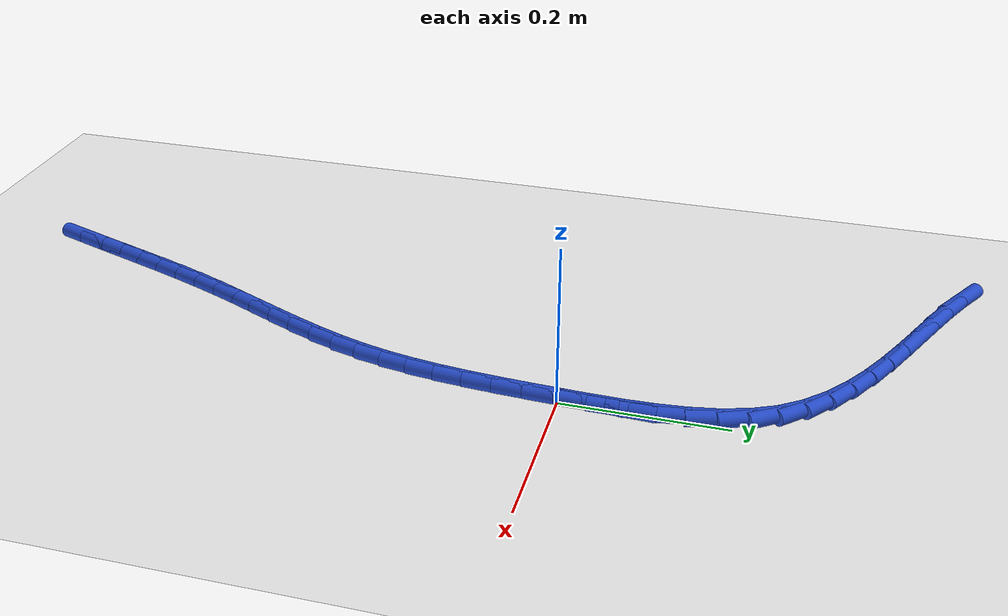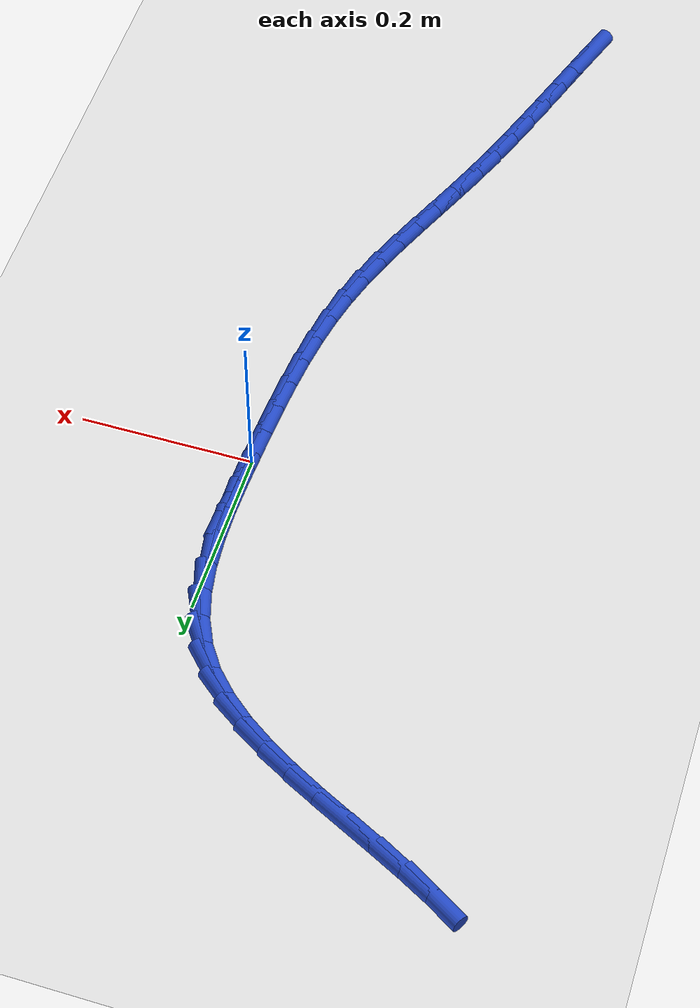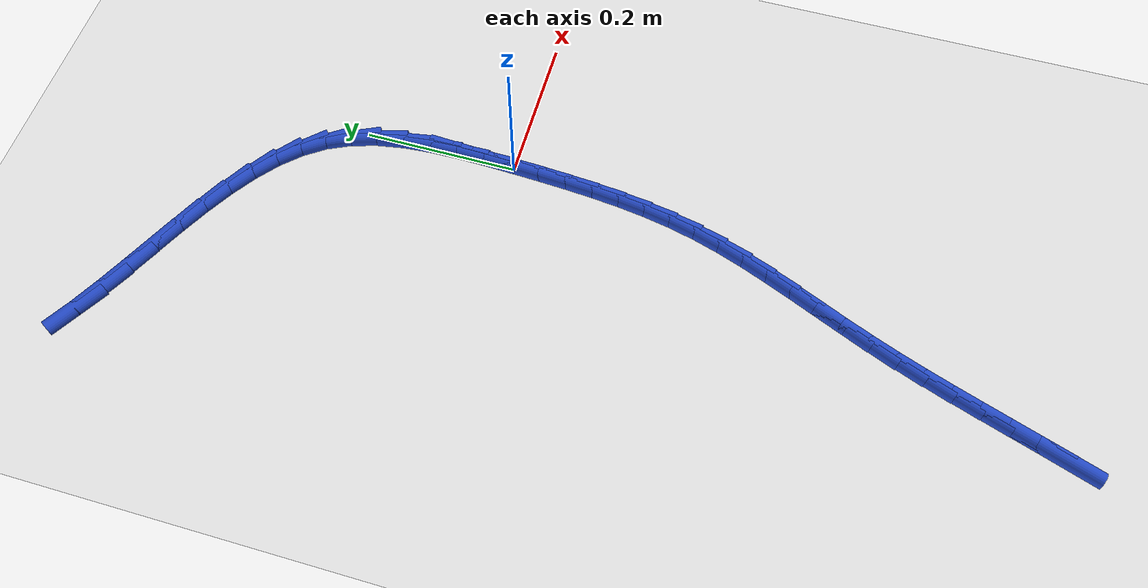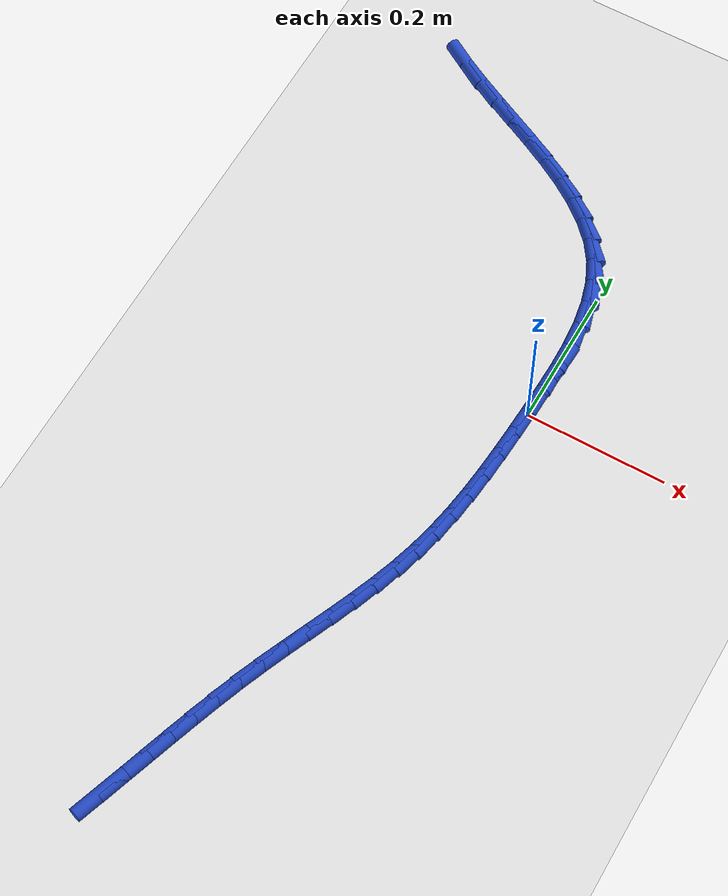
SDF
<sdf version="1.6">
 <world name="default">
  <model name="ground_plane">
   <static>1</static>
   <link name="link">
    <collision name="collision">
     <geometry><plane><normal>0 0 1</normal><size>100 100</size></plane></geometry>
     <surface><friction><ode><mu>100</mu><mu2>50</mu2></ode></friction></surface>
    </collision>
    <visual name="visual">
     <cast_shadows>0</cast_shadows>
     <geometry><plane><normal>0 0 1</normal><size>100 100</size></plane></geometry>
     <material>
      <script><uri>file://media/materials/scripts/gazebo.material</uri><name>Gazebo/WhiteGlow</name></script>
     </material>
    </visual>
   </link>
  </model>
  <model name="line">
   <link name="link_0">
    <pose>-1.1492543028346347e-17 6.938893903907228e-18 0.01 0 1.57 1.5265133083113267</pose>
    <collision name="collision">
     <geometry><cylinder><radius>0.01</radius><length>0.08</length></cylinder></geometry>
    </collision>
    <visual name="visual">
     <material>
      <script><name>Gazebo/Blue</name><uri>file://media/materials/scripts/gazebo.material</uri></script>
     </material>
     <geometry><cylinder><radius>0.01</radius><length>0.08</length></cylinder></geometry>
    </visual>
   </link>
   <link name="link_1">
    <pose>0.0016721609055566793 0.03773608466565423 0.01 0 1.57 1.5485229028191574</pose>
    <collision name="collision">
     <geometry><cylinder><radius>0.01</radius><length>0.08</length></cylinder></geometry>
    </collision>
    <visual name="visual">
     <material>
      <script><name>Gazebo/Blue</name><uri>file://media/materials/scripts/gazebo.material</uri></script>
     </material>
     <geometry><cylinder><radius>0.01</radius><length>0.08</length></cylinder></geometry>
    </visual>
   </link>
   <link name="link_2">
    <pose>0.0025159711578495773 0.0756139928392952 0.01 0 1.57 -1.5518823976013116</pose>
    <collision name="collision">
     <geometry><cylinder><radius>0.01</radius><length>0.08</length></cylinder></geometry>
    </collision>
    <visual name="visual">
     <material>
      <script><name>Gazebo/Blue</name><uri>file://media/materials/scripts/gazebo.material</uri></script>
     </material>
     <geometry><cylinder><radius>0.01</radius><length>0.08</length></cylinder></geometry>
    </visual>
   </link>
   <link name="link_3">
    <pose>0.001807100534460578 0.1130882841108333 0.01 0 1.57 -1.4892292406859797</pose>
    <collision name="collision">
     <geometry><cylinder><radius>0.01</radius><length>0.08</length></cylinder></geometry>
    </collision>
    <visual name="visual">
     <material>
      <script><name>Gazebo/Blue</name><uri>file://media/materials/scripts/gazebo.material</uri></script>
     </material>
     <geometry><cylinder><radius>0.01</radius><length>0.08</length></cylinder></geometry>
    </visual>
   </link>
   <link name="link_4">
    <pose>-0.0011787811870284217 0.14961351807017886 0.01 0 1.57 -1.4015185372533039</pose>
    <collision name="collision">
     <geometry><cylinder><radius>0.01</radius><length>0.08</length></cylinder></geometry>
    </collision>
    <visual name="visual">
     <material>
      <script><name>Gazebo/Blue</name><uri>file://media/materials/scripts/gazebo.material</uri></script>
     </material>
     <geometry><cylinder><radius>0.01</radius><length>0.08</length></cylinder></geometry>
    </visual>
   </link>
   <link name="link_5">
    <pose>-0.007166004229035531 0.18464425430724218 0.01 0 1.57 -1.2844737737605367</pose>
    <collision name="collision">
     <geometry><cylinder><radius>0.01</radius><length>0.08</length></cylinder></geometry>
    </collision>
    <visual name="visual">
     <material>
      <script><name>Gazebo/Blue</name><uri>file://media/materials/scripts/gazebo.material</uri></script>
     </material>
     <geometry><cylinder><radius>0.01</radius><length>0.08</length></cylinder></geometry>
    </visual>
   </link>
   <link name="link_6">
    <pose>-0.016878898813978853 0.21763505241193368 0.01 0 1.57 -1.1348796790320024</pose>
    <collision name="collision">
     <geometry><cylinder><radius>0.01</radius><length>0.08</length></cylinder></geometry>
    </collision>
    <visual name="visual">
     <material>
      <script><name>Gazebo/Blue</name><uri>file://media/materials/scripts/gazebo.material</uri></script>
     </material>
     <geometry><cylinder><radius>0.01</radius><length>0.08</length></cylinder></geometry>
    </visual>
   </link>
   <link name="link_7">
    <pose>-0.03104179516427648 0.24804047197416362 0.01 0 1.57 -0.9621320333910169</pose>
    <collision name="collision">
     <geometry><cylinder><radius>0.01</radius><length>0.08</length></cylinder></geometry>
    </collision>
    <visual name="visual">
     <material>
      <script><name>Gazebo/Blue</name><uri>file://media/materials/scripts/gazebo.material</uri></script>
     </material>
     <geometry><cylinder><radius>0.01</radius><length>0.08</length></cylinder></geometry>
    </visual>
   </link>
   <link name="link_8">
    <pose>-0.05015590536359795 0.27546652729631044 0.01 0 1.57 -0.8079349664095671</pose>
    <collision name="collision">
     <geometry><cylinder><radius>0.01</radius><length>0.08</length></cylinder></geometry>
    </collision>
    <visual name="visual">
     <material>
      <script><name>Gazebo/Blue</name><uri>file://media/materials/scripts/gazebo.material</uri></script>
     </material>
     <geometry><cylinder><radius>0.01</radius><length>0.08</length></cylinder></geometry>
    </visual>
   </link>
   <link name="link_9">
    <pose>-0.07376770160157031 0.30016731919198325 0.01 0 1.57 -0.6853850154485804</pose>
    <collision name="collision">
     <geometry><cylinder><radius>0.01</radius><length>0.08</length></cylinder></geometry>
    </collision>
    <visual name="visual">
     <material>
      <script><name>Gazebo/Blue</name><uri>file://media/materials/scripts/gazebo.material</uri></script>
     </material>
     <geometry><cylinder><radius>0.01</radius><length>0.08</length></cylinder></geometry>
    </visual>
   </link>
   <link name="link_10">
    <pose>-0.10116833331812548 0.32257026398315164 0.01 0 1.57 -0.5928047303567798</pose>
    <collision name="collision">
     <geometry><cylinder><radius>0.01</radius><length>0.08</length></cylinder></geometry>
    </collision>
    <visual name="visual">
     <material>
      <script><name>Gazebo/Blue</name><uri>file://media/materials/scripts/gazebo.material</uri></script>
     </material>
     <geometry><cylinder><radius>0.01</radius><length>0.08</length></cylinder></geometry>
    </visual>
   </link>
   <link name="link_11">
    <pose>-0.13164894724163853 0.3431027798324154 0.01 0 1.57 -0.5263918821193003</pose>
    <collision name="collision">
     <geometry><cylinder><radius>0.01</radius><length>0.08</length></cylinder></geometry>
    </collision>
    <visual name="visual">
     <material>
      <script><name>Gazebo/Blue</name><uri>file://media/materials/scripts/gazebo.material</uri></script>
     </material>
     <geometry><cylinder><radius>0.01</radius><length>0.08</length></cylinder></geometry>
    </visual>
   </link>
   <link name="link_12">
    <pose>-0.1645006901004848 0.3621922849023749 0.01 0 1.57 -0.48240281276945585</pose>
    <collision name="collision">
     <geometry><cylinder><radius>0.01</radius><length>0.08</length></cylinder></geometry>
    </collision>
    <visual name="visual">
     <material>
      <script><name>Gazebo/Blue</name><uri>file://media/materials/scripts/gazebo.material</uri></script>
     </material>
     <geometry><cylinder><radius>0.01</radius><length>0.08</length></cylinder></geometry>
    </visual>
   </link>
   <link name="link_13">
    <pose>-0.19901470862303922 0.38026619735562994 0.01 0 1.57 -0.4580385133402407</pose>
    <collision name="collision">
     <geometry><cylinder><radius>0.01</radius><length>0.08</length></cylinder></geometry>
    </collision>
    <visual name="visual">
     <material>
      <script><name>Gazebo/Blue</name><uri>file://media/materials/scripts/gazebo.material</uri></script>
     </material>
     <geometry><cylinder><radius>0.01</radius><length>0.08</length></cylinder></geometry>
    </visual>
   </link>
   <link name="link_14">
    <pose>-0.23448214953767693 0.3977519353547804 0.01 0 1.57 -0.4516813231175481</pose>
    <collision name="collision">
     <geometry><cylinder><radius>0.01</radius><length>0.08</length></cylinder></geometry>
    </collision>
    <visual name="visual">
     <material>
      <script><name>Gazebo/Blue</name><uri>file://media/materials/scripts/gazebo.material</uri></script>
     </material>
     <geometry><cylinder><radius>0.01</radius><length>0.08</length></cylinder></geometry>
    </visual>
   </link>
   <link name="link_15">
    <pose>-0.27019415957277326 0.41507691706242666 0.01 0 1.57 -0.4629160748901827</pose>
    <collision name="collision">
     <geometry><cylinder><radius>0.01</radius><length>0.08</length></cylinder></geometry>
    </collision>
    <visual name="visual">
     <material>
      <script><name>Gazebo/Blue</name><uri>file://media/materials/scripts/gazebo.material</uri></script>
     </material>
     <geometry><cylinder><radius>0.01</radius><length>0.08</length></cylinder></geometry>
    </visual>
   </link>
   <link name="link_16">
    <pose>-0.3054418854567031 0.4326685606411684 0.01 0 1.57 -0.492526737449866</pose>
    <collision name="collision">
     <geometry><cylinder><radius>0.01</radius><length>0.08</length></cylinder></geometry>
    </collision>
    <visual name="visual">
     <material>
      <script><name>Gazebo/Blue</name><uri>file://media/materials/scripts/gazebo.material</uri></script>
     </material>
     <geometry><cylinder><radius>0.01</radius><length>0.08</length></cylinder></geometry>
    </visual>
   </link>
   <link name="link_17">
    <pose>-0.3395164739178418 0.45095428425360573 0.01 0 1.57 -0.5425105001039593</pose>
    <collision name="collision">
     <geometry><cylinder><radius>0.01</radius><length>0.08</length></cylinder></geometry>
    </collision>
    <visual name="visual">
     <material>
      <script><name>Gazebo/Blue</name><uri>file://media/materials/scripts/gazebo.material</uri></script>
     </material>
     <geometry><cylinder><radius>0.01</radius><length>0.08</length></cylinder></geometry>
    </visual>
   </link>
   <link name="link_229">
    <pose>-0.20659388890848146 -0.7194712912096828 0.01 0 1.57 1.24582162398789</pose>
    <collision name="collision">
     <geometry><cylinder><radius>0.01</radius><length>0.08</length></cylinder></geometry>
    </collision>
    <visual name="visual">
     <material>
      <script><name>Gazebo/Blue</name><uri>file://media/materials/scripts/gazebo.material</uri></script>
     </material>
     <geometry><cylinder><radius>0.01</radius><length>0.08</length></cylinder></geometry>
    </visual>
   </link>
   <link name="link_230">
    <pose>-0.19506580880055988 -0.6852551739231111 0.01 0 1.57 1.2506947982549532</pose>
    <collision name="collision">
     <geometry><cylinder><radius>0.01</radius><length>0.08</length></cylinder></geometry>
    </collision>
    <visual name="visual">
     <material>
      <script><name>Gazebo/Blue</name><uri>file://media/materials/scripts/gazebo.material</uri></script>
     </material>
     <geometry><cylinder><radius>0.01</radius><length>0.08</length></cylinder></geometry>
    </visual>
   </link>
   <link name="link_231">
    <pose>-0.1836827109166412 -0.6509172366382779 0.01 0 1.57 1.2504604868171731</pose>
    <collision name="collision">
     <geometry><cylinder><radius>0.01</radius><length>0.08</length></cylinder></geometry>
    </collision>
    <visual name="visual">
     <material>
      <script><name>Gazebo/Blue</name><uri>file://media/materials/scripts/gazebo.material</uri></script>
     </material>
     <geometry><cylinder><radius>0.01</radius><length>0.08</length></cylinder></geometry>
    </visual>
   </link>
   <link name="link_232">
    <pose>-0.17227723118726426 -0.6165387546428759 0.01 0 1.57 1.2451374818916998</pose>
    <collision name="collision">
     <geometry><cylinder><radius>0.01</radius><length>0.08</length></cylinder></geometry>
    </collision>
    <visual name="visual">
     <material>
      <script><name>Gazebo/Blue</name><uri>file://media/materials/scripts/gazebo.material</uri></script>
     </material>
     <geometry><cylinder><radius>0.01</radius><length>0.08</length></cylinder></geometry>
    </visual>
   </link>
   <link name="link_233">
    <pose>-0.16068200554296774 -0.5822010032245969 0.01 0 1.57 1.2347250458905235</pose>
    <collision name="collision">
     <geometry><cylinder><radius>0.01</radius><length>0.08</length></cylinder></geometry>
    </collision>
    <visual name="visual">
     <material>
      <script><name>Gazebo/Blue</name><uri>file://media/materials/scripts/gazebo.material</uri></script>
     </material>
     <geometry><cylinder><radius>0.01</radius><length>0.08</length></cylinder></geometry>
    </visual>
   </link>
   <link name="link_234">
    <pose>-0.14872966991429043 -0.5479852576711333 0.01 0 1.57 1.2192071138700744</pose>
    <collision name="collision">
     <geometry><cylinder><radius>0.01</radius><length>0.08</length></cylinder></geometry>
    </collision>
    <visual name="visual">
     <material>
      <script><name>Gazebo/Blue</name><uri>file://media/materials/scripts/gazebo.material</uri></script>
     </material>
     <geometry><cylinder><radius>0.01</radius><length>0.08</length></cylinder></geometry>
    </visual>
   </link>
   <link name="link_235">
    <pose>-0.13625286023177116 -0.5139727932701776 0.01 0 1.57 1.1985606228288468</pose>
    <collision name="collision">
     <geometry><cylinder><radius>0.01</radius><length>0.08</length></cylinder></geometry>
    </collision>
    <visual name="visual">
     <material>
      <script><name>Gazebo/Blue</name><uri>file://media/materials/scripts/gazebo.material</uri></script>
     </material>
     <geometry><cylinder><radius>0.01</radius><length>0.08</length></cylinder></geometry>
    </visual>
   </link>
   <link name="link_236">
    <pose>-0.12308422118752911 -0.48024488244937924 0.01 0 1.57 1.1759556553406332</pose>
    <collision name="collision">
     <geometry><cylinder><radius>0.01</radius><length>0.08</length></cylinder></geometry>
    </collision>
    <visual name="visual">
     <material>
      <script><name>Gazebo/Blue</name><uri>file://media/materials/scripts/gazebo.material</uri></script>
     </material>
     <geometry><cylinder><radius>0.01</radius><length>0.08</length></cylinder></geometry>
    </visual>
   </link>
   <link name="link_237">
    <pose>-0.10916644270324535 -0.4468468755690554 0.01 0 1.57 1.1625191257558436</pose>
    <collision name="collision">
     <geometry><cylinder><radius>0.01</radius><length>0.08</length></cylinder></geometry>
    </collision>
    <visual name="visual">
     <material>
      <script><name>Gazebo/Blue</name><uri>file://media/materials/scripts/gazebo.material</uri></script>
     </material>
     <geometry><cylinder><radius>0.01</radius><length>0.08</length></cylinder></geometry>
    </visual>
   </link>
   <link name="link_238">
    <pose>-0.09482697990855746 -0.413698524072041 0.01 0 1.57 1.1606932204147866</pose>
    <collision name="collision">
     <geometry><cylinder><radius>0.01</radius><length>0.08</length></cylinder></geometry>
    </collision>
    <visual name="visual">
     <material>
      <script><name>Gazebo/Blue</name><uri>file://media/materials/scripts/gazebo.material</uri></script>
     </material>
     <geometry><cylinder><radius>0.01</radius><length>0.08</length></cylinder></geometry>
    </visual>
   </link>
   <link name="link_239">
    <pose>-0.0804773314257723 -0.380692145081533 0.01 0 1.57 1.170591544392478</pose>
    <collision name="collision">
     <geometry><cylinder><radius>0.01</radius><length>0.08</length></cylinder></geometry>
    </collision>
    <visual name="visual">
     <material>
      <script><name>Gazebo/Blue</name><uri>file://media/materials/scripts/gazebo.material</uri></script>
     </material>
     <geometry><cylinder><radius>0.01</radius><length>0.08</length></cylinder></geometry>
    </visual>
   </link>
   <link name="link_240">
    <pose>-0.06652899587719709 -0.3477200557207285 0.01 0 1.57 1.1924484245411744</pose>
    <collision name="collision">
     <geometry><cylinder><radius>0.01</radius><length>0.08</length></cylinder></geometry>
    </collision>
    <visual name="visual">
     <material>
      <script><name>Gazebo/Blue</name><uri>file://media/materials/scripts/gazebo.material</uri></script>
     </material>
     <geometry><cylinder><radius>0.01</radius><length>0.08</length></cylinder></geometry>
    </visual>
   </link>
   <link name="link_241">
    <pose>-0.053393471885137864 -0.31467457311282265 0.01 0 1.57 1.2265828185197651</pose>
    <collision name="collision">
     <geometry><cylinder><radius>0.01</radius><length>0.08</length></cylinder></geometry>
    </collision>
    <visual name="visual">
     <material>
      <script><name>Gazebo/Blue</name><uri>file://media/materials/scripts/gazebo.material</uri></script>
     </material>
     <geometry><cylinder><radius>0.01</radius><length>0.08</length></cylinder></geometry>
    </visual>
   </link>
   <link name="link_242">
    <pose>-0.04148225807190183 -0.2814480143810128 0.01 0 1.57 1.2733061776224701</pose>
    <collision name="collision">
     <geometry><cylinder><radius>0.01</radius><length>0.08</length></cylinder></geometry>
    </collision>
    <visual name="visual">
     <material>
      <script><name>Gazebo/Blue</name><uri>file://media/materials/scripts/gazebo.material</uri></script>
     </material>
     <geometry><cylinder><radius>0.01</radius><length>0.08</length></cylinder></geometry>
    </visual>
   </link>
   <link name="link_243">
    <pose>-0.031206851760182997 -0.2479326967732249 0.01 0 1.57 1.3292779883406691</pose>
    <collision name="collision">
     <geometry><cylinder><radius>0.01</radius><length>0.08</length></cylinder></geometry>
    </collision>
    <visual name="visual">
     <material>
      <script><name>Gazebo/Blue</name><uri>file://media/materials/scripts/gazebo.material</uri></script>
     </material>
     <geometry><cylinder><radius>0.01</radius><length>0.08</length></cylinder></geometry>
    </visual>
   </link>
   <link name="link_244">
    <pose>-0.022856377500000878 -0.21403268216444224 0.01 0 1.57 1.381066602118384</pose>
    <collision name="collision">
     <geometry><cylinder><radius>0.01</radius><length>0.08</length></cylinder></geometry>
    </collision>
    <visual name="visual">
     <material>
      <script><name>Gazebo/Blue</name><uri>file://media/materials/scripts/gazebo.material</uri></script>
     </material>
     <geometry><cylinder><radius>0.01</radius><length>0.08</length></cylinder></geometry>
    </visual>
   </link>
   <link name="link_245">
    <pose>-0.01626236580341164 -0.17969594964425517 0.01 0 1.57 1.4249788385813718</pose>
    <collision name="collision">
     <geometry><cylinder><radius>0.01</radius><length>0.08</length></cylinder></geometry>
    </collision>
    <visual name="visual">
     <material>
      <script><name>Gazebo/Blue</name><uri>file://media/materials/scripts/gazebo.material</uri></script>
     </material>
     <geometry><cylinder><radius>0.01</radius><length>0.08</length></cylinder></geometry>
    </visual>
   </link>
   <link name="link_246">
    <pose>-0.011149409648290748 -0.14488074154488503 0.01 0 1.57 1.460666159854528</pose>
    <collision name="collision">
     <geometry><cylinder><radius>0.01</radius><length>0.08</length></cylinder></geometry>
    </collision>
    <visual name="visual">
     <material>
      <script><name>Gazebo/Blue</name><uri>file://media/materials/scripts/gazebo.material</uri></script>
     </material>
     <geometry><cylinder><radius>0.01</radius><length>0.08</length></cylinder></geometry>
    </visual>
   </link>
   <link name="link_247">
    <pose>-0.007242102012513672 -0.10954530019855312 0.01 0 1.57 1.4880531123831722</pose>
    <collision name="collision">
     <geometry><cylinder><radius>0.01</radius><length>0.08</length></cylinder></geometry>
    </collision>
    <visual name="visual">
     <material>
      <script><name>Gazebo/Blue</name><uri>file://media/materials/scripts/gazebo.material</uri></script>
     </material>
     <geometry><cylinder><radius>0.01</radius><length>0.08</length></cylinder></geometry>
    </visual>
   </link>
   <link name="link_248">
    <pose>-0.004265035873955879 -0.07364786793748077 0.01 0 1.57 1.507261228904636</pose>
    <collision name="collision">
     <geometry><cylinder><radius>0.01</radius><length>0.08</length></cylinder></geometry>
    </collision>
    <visual name="visual">
     <material>
      <script><name>Gazebo/Blue</name><uri>file://media/materials/scripts/gazebo.material</uri></script>
     </material>
     <geometry><cylinder><radius>0.01</radius><length>0.08</length></cylinder></geometry>
    </visual>
   </link>
   <link name="link_249">
    <pose>-0.0019428042104928382 -0.03714668709388932 0.01 0 1.57 1.5185430620451401</pose>
    <collision name="collision">
     <geometry><cylinder><radius>0.01</radius><length>0.08</length></cylinder></geometry>
    </collision>
    <visual name="visual">
     <material>
      <script><name>Gazebo/Blue</name><uri>file://media/materials/scripts/gazebo.material</uri></script>
     </material>
     <geometry><cylinder><radius>0.01</radius><length>0.08</length></cylinder></geometry>
    </visual>
   </link>
   <link name="link_250">
    <pose>-1.7997756063259374e-17 -1.1796119636642288e-16 0.01 0 1.57 1.5222331188019091</pose>
    <collision name="collision">
     <geometry><cylinder><radius>0.01</radius><length>0.08</length></cylinder></geometry>
    </collision>
    <visual name="visual">
     <material>
      <script><name>Gazebo/Blue</name><uri>file://media/materials/scripts/gazebo.material</uri></script>
     </material>
     <geometry><cylinder><radius>0.01</radius><length>0.08</length></cylinder></geometry>
    </visual>
   </link>
   <link name="link_251">
    <pose>0.001838783779647114 0.0378339510119655 0.01 0 1.57 1.518716507558515</pose>
    <collision name="collision">
     <geometry><cylinder><radius>0.01</radius><length>0.08</length></cylinder></geometry>
    </collision>
    <visual name="visual">
     <material>
      <script><name>Gazebo/Blue</name><uri>file://media/materials/scripts/gazebo.material</uri></script>
     </material>
     <geometry><cylinder><radius>0.01</radius><length>0.08</length></cylinder></geometry>
    </visual>
   </link>
   <link name="link_252">
    <pose>0.003848954150573088 0.07639692360978621 0.01 0 1.57 1.5204578787473937</pose>
    <collision name="collision">
     <geometry><cylinder><radius>0.01</radius><length>0.08</length></cylinder></geometry>
    </collision>
    <visual name="visual">
     <material>
      <script><name>Gazebo/Blue</name><uri>file://media/materials/scripts/gazebo.material</uri></script>
     </material>
     <geometry><cylinder><radius>0.01</radius><length>0.08</length></cylinder></geometry>
    </visual>
   </link>
  </model>
 </world>
</sdf>
